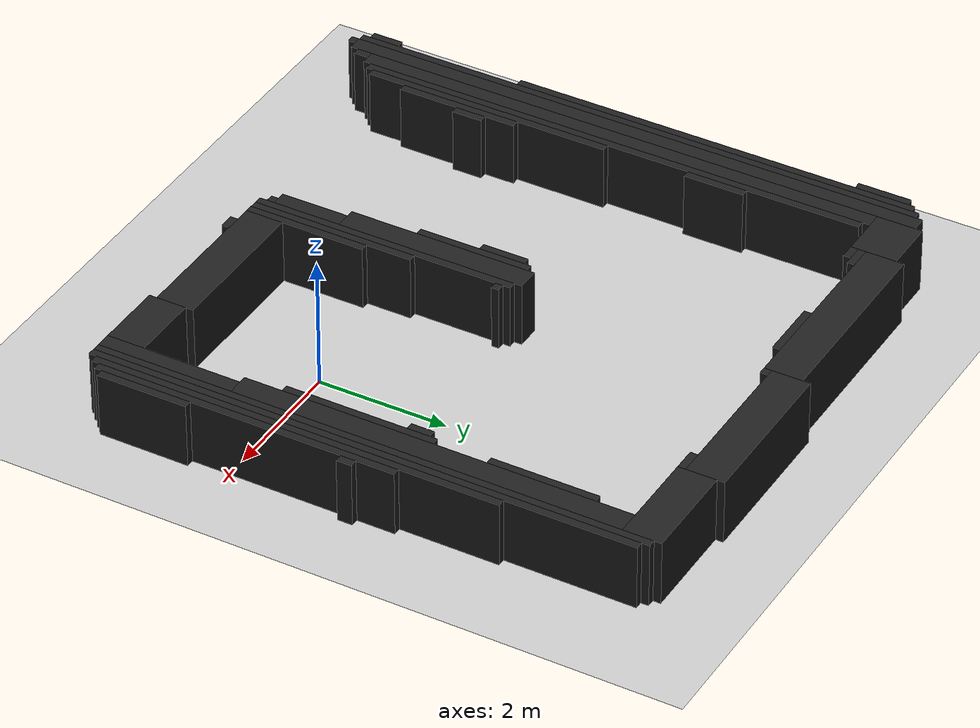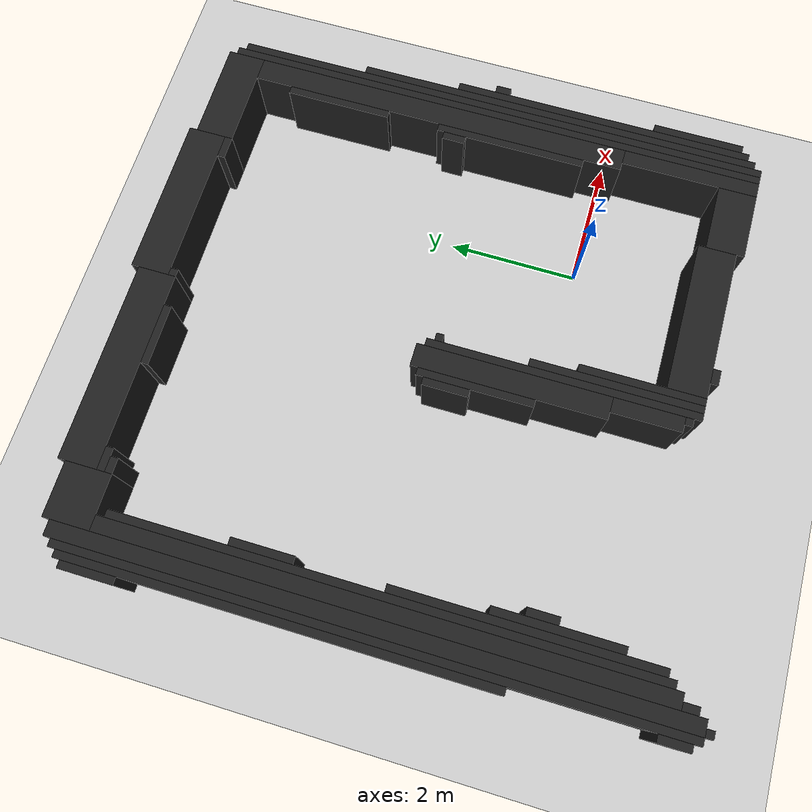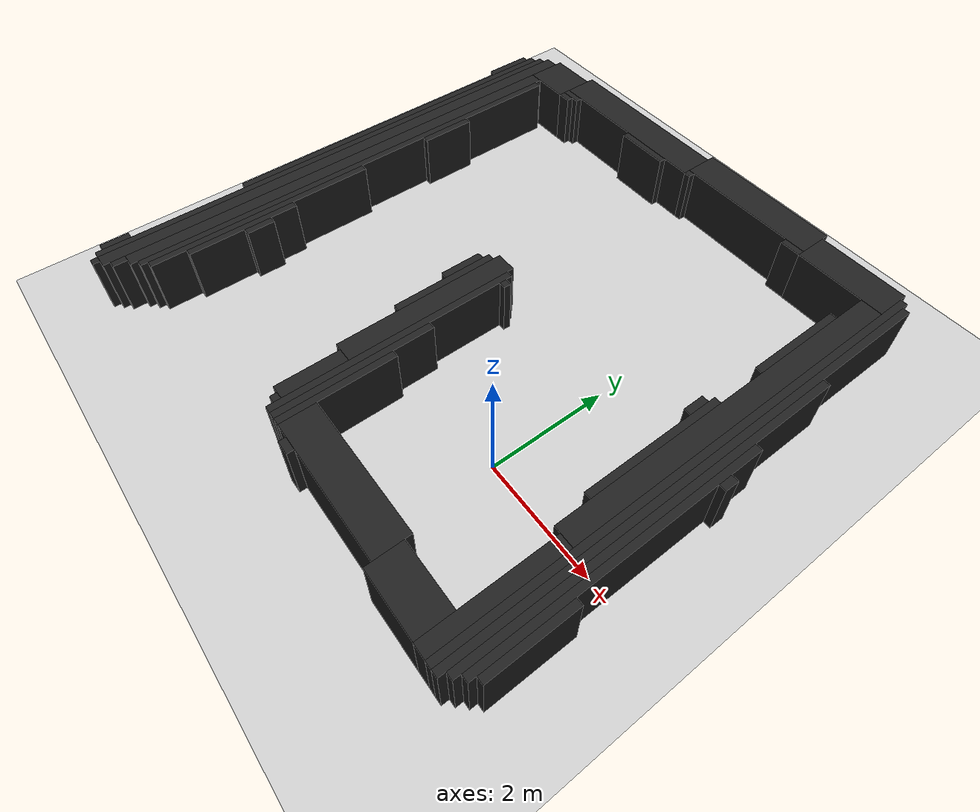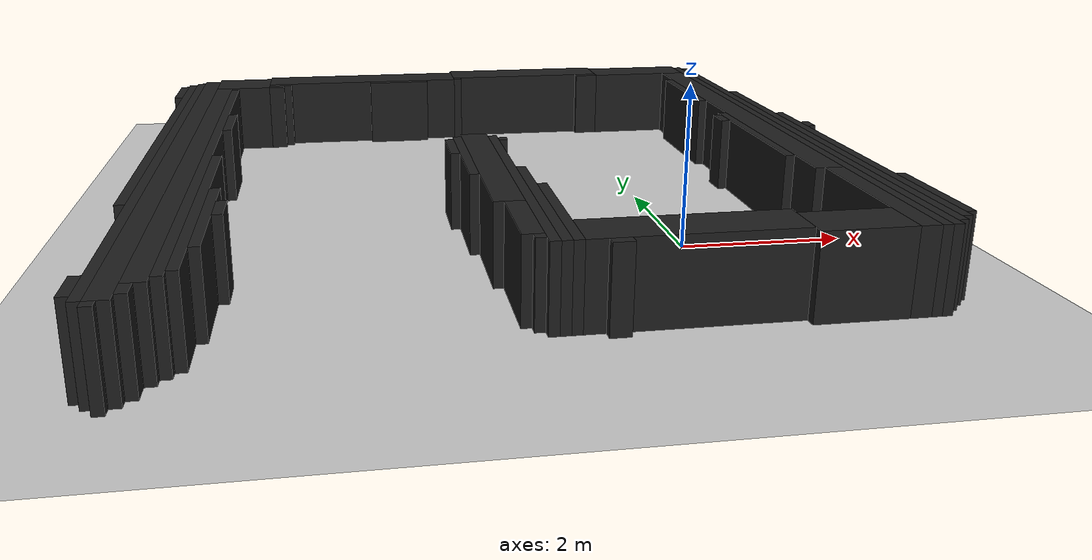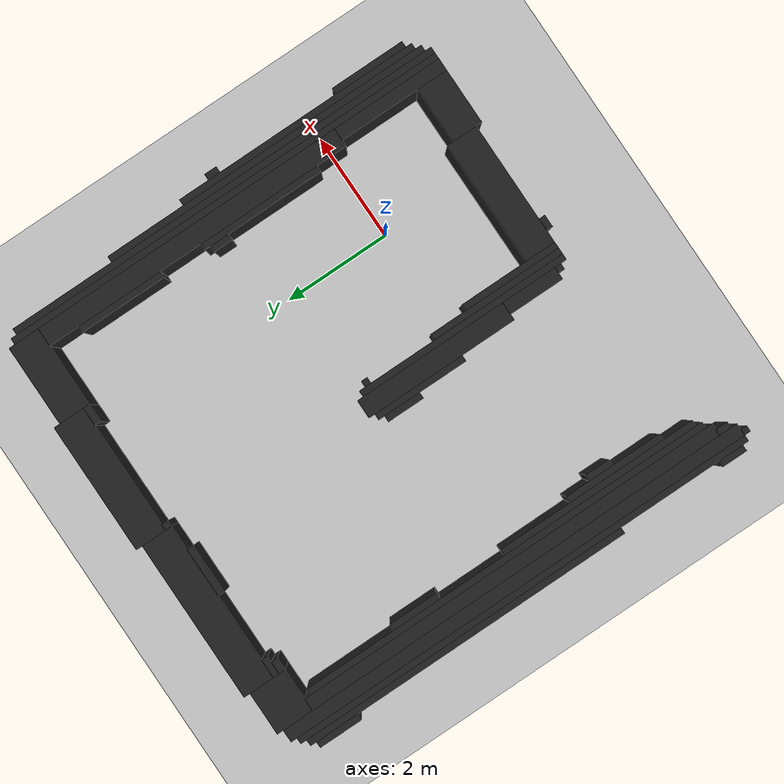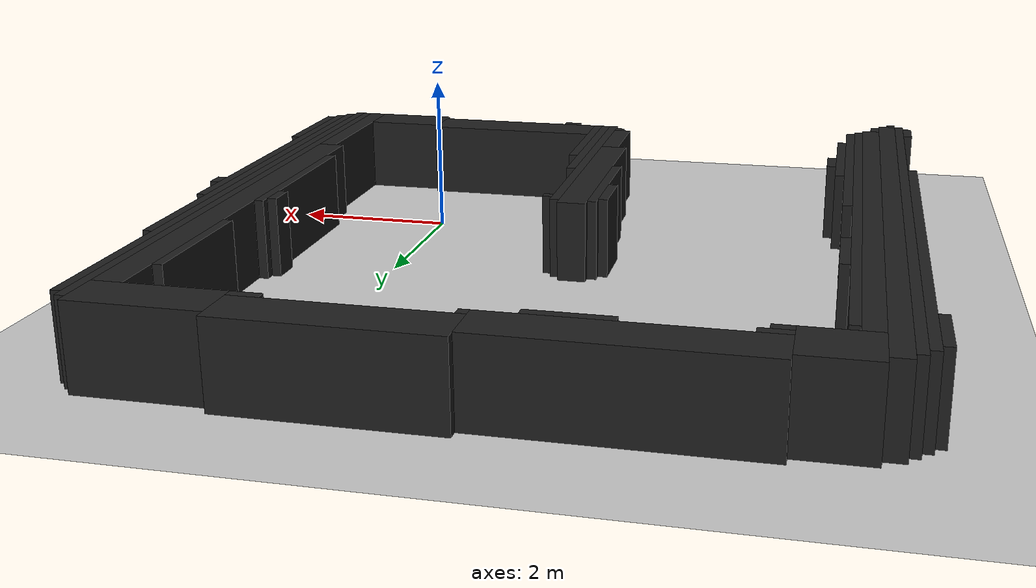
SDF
<?xml version="1.0"?>
<sdf version="1.9">
  <world name="drawn_tb4_world2">
    <physics name="1ms" type="ignored">
      <max_step_size>0.001</max_step_size>
      <real_time_factor>1.0</real_time_factor>
    </physics>

    <plugin filename="gz-sim-physics-system" name="gz::sim::systems::Physics"/>
    <plugin filename="gz-sim-user-commands-system" name="gz::sim::systems::UserCommands"/>
    <plugin filename="gz-sim-scene-broadcaster-system" name="gz::sim::systems::SceneBroadcaster"/>
    <plugin filename="gz-sim-sensors-system" name="gz::sim::systems::Sensors">
      <render_engine>ogre2</render_engine>
    </plugin>

    <scene>
      <ambient>0.45 0.45 0.45 1</ambient>
      <background>0.70 0.72 0.75 1</background>
      <shadows>false</shadows>
    </scene>

    <light name="sun" type="directional">
      <pose>0 0 10 0 0 0</pose>
      <diffuse>0.9 0.9 0.9 1</diffuse>
      <specular>0.1 0.1 0.1 1</specular>
      <direction>-0.5 0.2 -1</direction>
    </light>

    <model name="ground_plane">
      <static>true</static>
      <link name="link">
        <collision name="collision">
          <geometry>
            <plane>
              <normal>0 0 1</normal>
              <size>16.000 16.000</size>
            </plane>
          </geometry>
        </collision>
        <visual name="visual">
          <geometry>
            <plane>
              <normal>0 0 1</normal>
              <size>16.000 16.000</size>
            </plane>
          </geometry>
          <material>
            <ambient>0.78 0.78 0.78 1</ambient>
            <diffuse>0.78 0.78 0.78 1</diffuse>
          </material>
        </visual>
      </link>
    </model>

    <model name="maze_walls">
      <static>true</static>

      <link name="wall_0000">
        <pose>-0.87500 6.12500 0.50000 0 0 0</pose>
        <collision name="collision">
          <geometry>
            <box>
              <size>2.45000 0.58333 1.00000</size>
            </box>
          </geometry>
        </collision>
        <visual name="visual">
          <geometry>
            <box>
              <size>2.45000 0.58333 1.00000</size>
            </box>
          </geometry>
          <material>
            <ambient>0.12 0.12 0.12 1</ambient>
            <diffuse>0.12 0.12 0.12 1</diffuse>
            <specular>0 0 0 1</specular>
          </material>
        </visual>
      </link>
      <link name="wall_0001">
        <pose>-3.61667 6.00833 0.50000 0 0 0</pose>
        <collision name="collision">
          <geometry>
            <box>
              <size>3.03333 0.58333 1.00000</size>
            </box>
          </geometry>
        </collision>
        <visual name="visual">
          <geometry>
            <box>
              <size>3.03333 0.58333 1.00000</size>
            </box>
          </geometry>
          <material>
            <ambient>0.12 0.12 0.12 1</ambient>
            <diffuse>0.12 0.12 0.12 1</diffuse>
            <specular>0 0 0 1</specular>
          </material>
        </visual>
      </link>
      <link name="wall_0002">
        <pose>1.10833 6.00833 0.50000 0 0 0</pose>
        <collision name="collision">
          <geometry>
            <box>
              <size>1.51667 0.58333 1.00000</size>
            </box>
          </geometry>
        </collision>
        <visual name="visual">
          <geometry>
            <box>
              <size>1.51667 0.58333 1.00000</size>
            </box>
          </geometry>
          <material>
            <ambient>0.12 0.12 0.12 1</ambient>
            <diffuse>0.12 0.12 0.12 1</diffuse>
            <specular>0 0 0 1</specular>
          </material>
        </visual>
      </link>
      <link name="wall_0003">
        <pose>-5.54167 5.83333 0.50000 0 0 0</pose>
        <collision name="collision">
          <geometry>
            <box>
              <size>0.81667 0.70000 1.00000</size>
            </box>
          </geometry>
        </collision>
        <visual name="visual">
          <geometry>
            <box>
              <size>0.81667 0.70000 1.00000</size>
            </box>
          </geometry>
          <material>
            <ambient>0.12 0.12 0.12 1</ambient>
            <diffuse>0.12 0.12 0.12 1</diffuse>
            <specular>0 0 0 1</specular>
          </material>
        </visual>
      </link>
      <link name="wall_0004">
        <pose>1.92500 1.92500 0.50000 0 0 0</pose>
        <collision name="collision">
          <geometry>
            <box>
              <size>0.11667 8.51667 1.00000</size>
            </box>
          </geometry>
        </collision>
        <visual name="visual">
          <geometry>
            <box>
              <size>0.11667 8.51667 1.00000</size>
            </box>
          </geometry>
          <material>
            <ambient>0.12 0.12 0.12 1</ambient>
            <diffuse>0.12 0.12 0.12 1</diffuse>
            <specular>0 0 0 1</specular>
          </material>
        </visual>
      </link>
      <link name="wall_0005">
        <pose>-6.06667 1.51667 0.50000 0 0 0</pose>
        <collision name="collision">
          <geometry>
            <box>
              <size>0.23333 9.10000 1.00000</size>
            </box>
          </geometry>
        </collision>
        <visual name="visual">
          <geometry>
            <box>
              <size>0.23333 9.10000 1.00000</size>
            </box>
          </geometry>
          <material>
            <ambient>0.12 0.12 0.12 1</ambient>
            <diffuse>0.12 0.12 0.12 1</diffuse>
            <specular>0 0 0 1</specular>
          </material>
        </visual>
      </link>
      <link name="wall_0006">
        <pose>2.04167 1.86667 0.50000 0 0 0</pose>
        <collision name="collision">
          <geometry>
            <box>
              <size>0.11667 8.40000 1.00000</size>
            </box>
          </geometry>
        </collision>
        <visual name="visual">
          <geometry>
            <box>
              <size>0.11667 8.40000 1.00000</size>
            </box>
          </geometry>
          <material>
            <ambient>0.12 0.12 0.12 1</ambient>
            <diffuse>0.12 0.12 0.12 1</diffuse>
            <specular>0 0 0 1</specular>
          </material>
        </visual>
      </link>
      <link name="wall_0007">
        <pose>-6.24167 1.45833 0.50000 0 0 0</pose>
        <collision name="collision">
          <geometry>
            <box>
              <size>0.11667 8.98333 1.00000</size>
            </box>
          </geometry>
        </collision>
        <visual name="visual">
          <geometry>
            <box>
              <size>0.11667 8.98333 1.00000</size>
            </box>
          </geometry>
          <material>
            <ambient>0.12 0.12 0.12 1</ambient>
            <diffuse>0.12 0.12 0.12 1</diffuse>
            <specular>0 0 0 1</specular>
          </material>
        </visual>
      </link>
      <link name="wall_0008">
        <pose>-6.35833 2.68333 0.50000 0 0 0</pose>
        <collision name="collision">
          <geometry>
            <box>
              <size>0.11667 6.30000 1.00000</size>
            </box>
          </geometry>
        </collision>
        <visual name="visual">
          <geometry>
            <box>
              <size>0.11667 6.30000 1.00000</size>
            </box>
          </geometry>
          <material>
            <ambient>0.12 0.12 0.12 1</ambient>
            <diffuse>0.12 0.12 0.12 1</diffuse>
            <specular>0 0 0 1</specular>
          </material>
        </visual>
      </link>
      <link name="wall_0009">
        <pose>-2.04167 5.77500 0.50000 0 0 0</pose>
        <collision name="collision">
          <geometry>
            <box>
              <size>0.11667 0.11667 1.00000</size>
            </box>
          </geometry>
        </collision>
        <visual name="visual">
          <geometry>
            <box>
              <size>0.11667 0.11667 1.00000</size>
            </box>
          </geometry>
          <material>
            <ambient>0.12 0.12 0.12 1</ambient>
            <diffuse>0.12 0.12 0.12 1</diffuse>
            <specular>0 0 0 1</specular>
          </material>
        </visual>
      </link>
      <link name="wall_0010">
        <pose>0.17500 5.77500 0.50000 0 0 0</pose>
        <collision name="collision">
          <geometry>
            <box>
              <size>0.35000 0.11667 1.00000</size>
            </box>
          </geometry>
        </collision>
        <visual name="visual">
          <geometry>
            <box>
              <size>0.35000 0.11667 1.00000</size>
            </box>
          </geometry>
          <material>
            <ambient>0.12 0.12 0.12 1</ambient>
            <diffuse>0.12 0.12 0.12 1</diffuse>
            <specular>0 0 0 1</specular>
          </material>
        </visual>
      </link>
      <link name="wall_0011">
        <pose>-6.47500 5.30833 0.50000 0 0 0</pose>
        <collision name="collision">
          <geometry>
            <box>
              <size>0.11667 0.81667 1.00000</size>
            </box>
          </geometry>
        </collision>
        <visual name="visual">
          <geometry>
            <box>
              <size>0.11667 0.81667 1.00000</size>
            </box>
          </geometry>
          <material>
            <ambient>0.12 0.12 0.12 1</ambient>
            <diffuse>0.12 0.12 0.12 1</diffuse>
            <specular>0 0 0 1</specular>
          </material>
        </visual>
      </link>
      <link name="wall_0012">
        <pose>-4.95833 5.65833 0.50000 0 0 0</pose>
        <collision name="collision">
          <geometry>
            <box>
              <size>0.35000 0.11667 1.00000</size>
            </box>
          </geometry>
        </collision>
        <visual name="visual">
          <geometry>
            <box>
              <size>0.35000 0.11667 1.00000</size>
            </box>
          </geometry>
          <material>
            <ambient>0.12 0.12 0.12 1</ambient>
            <diffuse>0.12 0.12 0.12 1</diffuse>
            <specular>0 0 0 1</specular>
          </material>
        </visual>
      </link>
      <link name="wall_0013">
        <pose>-3.03333 5.65833 0.50000 0 0 0</pose>
        <collision name="collision">
          <geometry>
            <box>
              <size>0.93333 0.11667 1.00000</size>
            </box>
          </geometry>
        </collision>
        <visual name="visual">
          <geometry>
            <box>
              <size>0.93333 0.11667 1.00000</size>
            </box>
          </geometry>
          <material>
            <ambient>0.12 0.12 0.12 1</ambient>
            <diffuse>0.12 0.12 0.12 1</diffuse>
            <specular>0 0 0 1</specular>
          </material>
        </visual>
      </link>
      <link name="wall_0014">
        <pose>1.69167 2.74167 0.50000 0 0 0</pose>
        <collision name="collision">
          <geometry>
            <box>
              <size>0.35000 5.95000 1.00000</size>
            </box>
          </geometry>
        </collision>
        <visual name="visual">
          <geometry>
            <box>
              <size>0.35000 5.95000 1.00000</size>
            </box>
          </geometry>
          <material>
            <ambient>0.12 0.12 0.12 1</ambient>
            <diffuse>0.12 0.12 0.12 1</diffuse>
            <specular>0 0 0 1</specular>
          </material>
        </visual>
      </link>
      <link name="wall_0015">
        <pose>-5.01667 5.54167 0.50000 0 0 0</pose>
        <collision name="collision">
          <geometry>
            <box>
              <size>0.23333 0.11667 1.00000</size>
            </box>
          </geometry>
        </collision>
        <visual name="visual">
          <geometry>
            <box>
              <size>0.23333 0.11667 1.00000</size>
            </box>
          </geometry>
          <material>
            <ambient>0.12 0.12 0.12 1</ambient>
            <diffuse>0.12 0.12 0.12 1</diffuse>
            <specular>0 0 0 1</specular>
          </material>
        </visual>
      </link>
      <link name="wall_0016">
        <pose>-5.83333 1.40000 0.50000 0 0 0</pose>
        <collision name="collision">
          <geometry>
            <box>
              <size>0.23333 8.16667 1.00000</size>
            </box>
          </geometry>
        </collision>
        <visual name="visual">
          <geometry>
            <box>
              <size>0.23333 8.16667 1.00000</size>
            </box>
          </geometry>
          <material>
            <ambient>0.12 0.12 0.12 1</ambient>
            <diffuse>0.12 0.12 0.12 1</diffuse>
            <specular>0 0 0 1</specular>
          </material>
        </visual>
      </link>
      <link name="wall_0017">
        <pose>-5.65833 1.40000 0.50000 0 0 0</pose>
        <collision name="collision">
          <geometry>
            <box>
              <size>0.11667 7.93333 1.00000</size>
            </box>
          </geometry>
        </collision>
        <visual name="visual">
          <geometry>
            <box>
              <size>0.11667 7.93333 1.00000</size>
            </box>
          </geometry>
          <material>
            <ambient>0.12 0.12 0.12 1</ambient>
            <diffuse>0.12 0.12 0.12 1</diffuse>
            <specular>0 0 0 1</specular>
          </material>
        </visual>
      </link>
      <link name="wall_0018">
        <pose>1.45833 4.31667 0.50000 0 0 0</pose>
        <collision name="collision">
          <geometry>
            <box>
              <size>0.11667 1.63333 1.00000</size>
            </box>
          </geometry>
        </collision>
        <visual name="visual">
          <geometry>
            <box>
              <size>0.11667 1.63333 1.00000</size>
            </box>
          </geometry>
          <material>
            <ambient>0.12 0.12 0.12 1</ambient>
            <diffuse>0.12 0.12 0.12 1</diffuse>
            <specular>0 0 0 1</specular>
          </material>
        </visual>
      </link>
      <link name="wall_0019">
        <pose>2.15833 0.93333 0.50000 0 0 0</pose>
        <collision name="collision">
          <geometry>
            <box>
              <size>0.11667 6.30000 1.00000</size>
            </box>
          </geometry>
        </collision>
        <visual name="visual">
          <geometry>
            <box>
              <size>0.11667 6.30000 1.00000</size>
            </box>
          </geometry>
          <material>
            <ambient>0.12 0.12 0.12 1</ambient>
            <diffuse>0.12 0.12 0.12 1</diffuse>
            <specular>0 0 0 1</specular>
          </material>
        </visual>
      </link>
      <link name="wall_0020">
        <pose>-5.54167 3.15000 0.50000 0 0 0</pose>
        <collision name="collision">
          <geometry>
            <box>
              <size>0.11667 0.93333 1.00000</size>
            </box>
          </geometry>
        </collision>
        <visual name="visual">
          <geometry>
            <box>
              <size>0.11667 0.93333 1.00000</size>
            </box>
          </geometry>
          <material>
            <ambient>0.12 0.12 0.12 1</ambient>
            <diffuse>0.12 0.12 0.12 1</diffuse>
            <specular>0 0 0 1</specular>
          </material>
        </visual>
      </link>
      <link name="wall_0021">
        <pose>1.45833 1.51667 0.50000 0 0 0</pose>
        <collision name="collision">
          <geometry>
            <box>
              <size>0.11667 2.33333 1.00000</size>
            </box>
          </geometry>
        </collision>
        <visual name="visual">
          <geometry>
            <box>
              <size>0.11667 2.33333 1.00000</size>
            </box>
          </geometry>
          <material>
            <ambient>0.12 0.12 0.12 1</ambient>
            <diffuse>0.12 0.12 0.12 1</diffuse>
            <specular>0 0 0 1</specular>
          </material>
        </visual>
      </link>
      <link name="wall_0022">
        <pose>1.34167 2.39167 0.50000 0 0 0</pose>
        <collision name="collision">
          <geometry>
            <box>
              <size>0.11667 0.35000 1.00000</size>
            </box>
          </geometry>
        </collision>
        <visual name="visual">
          <geometry>
            <box>
              <size>0.11667 0.35000 1.00000</size>
            </box>
          </geometry>
          <material>
            <ambient>0.12 0.12 0.12 1</ambient>
            <diffuse>0.12 0.12 0.12 1</diffuse>
            <specular>0 0 0 1</specular>
          </material>
        </visual>
      </link>
      <link name="wall_0023">
        <pose>2.27500 0.23333 0.50000 0 0 0</pose>
        <collision name="collision">
          <geometry>
            <box>
              <size>0.11667 4.66667 1.00000</size>
            </box>
          </geometry>
        </collision>
        <visual name="visual">
          <geometry>
            <box>
              <size>0.11667 4.66667 1.00000</size>
            </box>
          </geometry>
          <material>
            <ambient>0.12 0.12 0.12 1</ambient>
            <diffuse>0.12 0.12 0.12 1</diffuse>
            <specular>0 0 0 1</specular>
          </material>
        </visual>
      </link>
      <link name="wall_0024">
        <pose>-2.27500 0.52500 0.50000 0 0 0</pose>
        <collision name="collision">
          <geometry>
            <box>
              <size>0.35000 2.91667 1.00000</size>
            </box>
          </geometry>
        </collision>
        <visual name="visual">
          <geometry>
            <box>
              <size>0.35000 2.91667 1.00000</size>
            </box>
          </geometry>
          <material>
            <ambient>0.12 0.12 0.12 1</ambient>
            <diffuse>0.12 0.12 0.12 1</diffuse>
            <specular>0 0 0 1</specular>
          </material>
        </visual>
      </link>
      <link name="wall_0025">
        <pose>2.39167 1.86667 0.50000 0 0 0</pose>
        <collision name="collision">
          <geometry>
            <box>
              <size>0.11667 0.23333 1.00000</size>
            </box>
          </geometry>
        </collision>
        <visual name="visual">
          <geometry>
            <box>
              <size>0.11667 0.23333 1.00000</size>
            </box>
          </geometry>
          <material>
            <ambient>0.12 0.12 0.12 1</ambient>
            <diffuse>0.12 0.12 0.12 1</diffuse>
            <specular>0 0 0 1</specular>
          </material>
        </visual>
      </link>
      <link name="wall_0026">
        <pose>-2.50833 0.99167 0.50000 0 0 0</pose>
        <collision name="collision">
          <geometry>
            <box>
              <size>0.11667 1.75000 1.00000</size>
            </box>
          </geometry>
        </collision>
        <visual name="visual">
          <geometry>
            <box>
              <size>0.11667 1.75000 1.00000</size>
            </box>
          </geometry>
          <material>
            <ambient>0.12 0.12 0.12 1</ambient>
            <diffuse>0.12 0.12 0.12 1</diffuse>
            <specular>0 0 0 1</specular>
          </material>
        </visual>
      </link>
      <link name="wall_0027">
        <pose>-2.04167 -0.17500 0.50000 0 0 0</pose>
        <collision name="collision">
          <geometry>
            <box>
              <size>0.11667 4.08333 1.00000</size>
            </box>
          </geometry>
        </collision>
        <visual name="visual">
          <geometry>
            <box>
              <size>0.11667 4.08333 1.00000</size>
            </box>
          </geometry>
          <material>
            <ambient>0.12 0.12 0.12 1</ambient>
            <diffuse>0.12 0.12 0.12 1</diffuse>
            <specular>0 0 0 1</specular>
          </material>
        </visual>
      </link>
      <link name="wall_0028">
        <pose>-2.62500 1.40000 0.50000 0 0 0</pose>
        <collision name="collision">
          <geometry>
            <box>
              <size>0.11667 0.70000 1.00000</size>
            </box>
          </geometry>
        </collision>
        <visual name="visual">
          <geometry>
            <box>
              <size>0.11667 0.70000 1.00000</size>
            </box>
          </geometry>
          <material>
            <ambient>0.12 0.12 0.12 1</ambient>
            <diffuse>0.12 0.12 0.12 1</diffuse>
            <specular>0 0 0 1</specular>
          </material>
        </visual>
      </link>
      <link name="wall_0029">
        <pose>-1.92500 1.69167 0.50000 0 0 0</pose>
        <collision name="collision">
          <geometry>
            <box>
              <size>0.11667 0.11667 1.00000</size>
            </box>
          </geometry>
        </collision>
        <visual name="visual">
          <geometry>
            <box>
              <size>0.11667 0.11667 1.00000</size>
            </box>
          </geometry>
          <material>
            <ambient>0.12 0.12 0.12 1</ambient>
            <diffuse>0.12 0.12 0.12 1</diffuse>
            <specular>0 0 0 1</specular>
          </material>
        </visual>
      </link>
      <link name="wall_0030">
        <pose>-5.54167 -0.52500 0.50000 0 0 0</pose>
        <collision name="collision">
          <geometry>
            <box>
              <size>0.11667 3.85000 1.00000</size>
            </box>
          </geometry>
        </collision>
        <visual name="visual">
          <geometry>
            <box>
              <size>0.11667 3.85000 1.00000</size>
            </box>
          </geometry>
          <material>
            <ambient>0.12 0.12 0.12 1</ambient>
            <diffuse>0.12 0.12 0.12 1</diffuse>
            <specular>0 0 0 1</specular>
          </material>
        </visual>
      </link>
      <link name="wall_0031">
        <pose>-1.92500 -0.93333 0.50000 0 0 0</pose>
        <collision name="collision">
          <geometry>
            <box>
              <size>0.11667 2.56667 1.00000</size>
            </box>
          </geometry>
        </collision>
        <visual name="visual">
          <geometry>
            <box>
              <size>0.11667 2.56667 1.00000</size>
            </box>
          </geometry>
          <material>
            <ambient>0.12 0.12 0.12 1</ambient>
            <diffuse>0.12 0.12 0.12 1</diffuse>
            <specular>0 0 0 1</specular>
          </material>
        </visual>
      </link>
      <link name="wall_0032">
        <pose>-5.42500 -0.93333 0.50000 0 0 0</pose>
        <collision name="collision">
          <geometry>
            <box>
              <size>0.11667 1.86667 1.00000</size>
            </box>
          </geometry>
        </collision>
        <visual name="visual">
          <geometry>
            <box>
              <size>0.11667 1.86667 1.00000</size>
            </box>
          </geometry>
          <material>
            <ambient>0.12 0.12 0.12 1</ambient>
            <diffuse>0.12 0.12 0.12 1</diffuse>
            <specular>0 0 0 1</specular>
          </material>
        </visual>
      </link>
      <link name="wall_0033">
        <pose>1.75000 -1.28333 0.50000 0 0 0</pose>
        <collision name="collision">
          <geometry>
            <box>
              <size>0.23333 2.10000 1.00000</size>
            </box>
          </geometry>
        </collision>
        <visual name="visual">
          <geometry>
            <box>
              <size>0.23333 2.10000 1.00000</size>
            </box>
          </geometry>
          <material>
            <ambient>0.12 0.12 0.12 1</ambient>
            <diffuse>0.12 0.12 0.12 1</diffuse>
            <specular>0 0 0 1</specular>
          </material>
        </visual>
      </link>
      <link name="wall_0034">
        <pose>-1.80833 -1.28333 0.50000 0 0 0</pose>
        <collision name="collision">
          <geometry>
            <box>
              <size>0.11667 1.86667 1.00000</size>
            </box>
          </geometry>
        </collision>
        <visual name="visual">
          <geometry>
            <box>
              <size>0.11667 1.86667 1.00000</size>
            </box>
          </geometry>
          <material>
            <ambient>0.12 0.12 0.12 1</ambient>
            <diffuse>0.12 0.12 0.12 1</diffuse>
            <specular>0 0 0 1</specular>
          </material>
        </visual>
      </link>
      <link name="wall_0035">
        <pose>-5.30833 -0.70000 0.50000 0 0 0</pose>
        <collision name="collision">
          <geometry>
            <box>
              <size>0.11667 0.46667 1.00000</size>
            </box>
          </geometry>
        </collision>
        <visual name="visual">
          <geometry>
            <box>
              <size>0.11667 0.46667 1.00000</size>
            </box>
          </geometry>
          <material>
            <ambient>0.12 0.12 0.12 1</ambient>
            <diffuse>0.12 0.12 0.12 1</diffuse>
            <specular>0 0 0 1</specular>
          </material>
        </visual>
      </link>
      <link name="wall_0036">
        <pose>2.39167 -1.28333 0.50000 0 0 0</pose>
        <collision name="collision">
          <geometry>
            <box>
              <size>0.11667 1.40000 1.00000</size>
            </box>
          </geometry>
        </collision>
        <visual name="visual">
          <geometry>
            <box>
              <size>0.11667 1.40000 1.00000</size>
            </box>
          </geometry>
          <material>
            <ambient>0.12 0.12 0.12 1</ambient>
            <diffuse>0.12 0.12 0.12 1</diffuse>
            <specular>0 0 0 1</specular>
          </material>
        </visual>
      </link>
      <link name="wall_0037">
        <pose>-2.21667 -1.45833 0.50000 0 0 0</pose>
        <collision name="collision">
          <geometry>
            <box>
              <size>0.23333 1.05000 1.00000</size>
            </box>
          </geometry>
        </collision>
        <visual name="visual">
          <geometry>
            <box>
              <size>0.23333 1.05000 1.00000</size>
            </box>
          </geometry>
          <material>
            <ambient>0.12 0.12 0.12 1</ambient>
            <diffuse>0.12 0.12 0.12 1</diffuse>
            <specular>0 0 0 1</specular>
          </material>
        </visual>
      </link>
      <link name="wall_0038">
        <pose>-0.58333 -1.92500 0.50000 0 0 0</pose>
        <collision name="collision">
          <geometry>
            <box>
              <size>2.33333 0.58333 1.00000</size>
            </box>
          </geometry>
        </collision>
        <visual name="visual">
          <geometry>
            <box>
              <size>2.33333 0.58333 1.00000</size>
            </box>
          </geometry>
          <material>
            <ambient>0.12 0.12 0.12 1</ambient>
            <diffuse>0.12 0.12 0.12 1</diffuse>
            <specular>0 0 0 1</specular>
          </material>
        </visual>
      </link>
      <link name="wall_0039">
        <pose>1.10833 -2.04167 0.50000 0 0 0</pose>
        <collision name="collision">
          <geometry>
            <box>
              <size>1.05000 0.58333 1.00000</size>
            </box>
          </geometry>
        </collision>
        <visual name="visual">
          <geometry>
            <box>
              <size>1.05000 0.58333 1.00000</size>
            </box>
          </geometry>
          <material>
            <ambient>0.12 0.12 0.12 1</ambient>
            <diffuse>0.12 0.12 0.12 1</diffuse>
            <specular>0 0 0 1</specular>
          </material>
        </visual>
      </link>
      <link name="wall_0040">
        <pose>-2.15833 -2.04167 0.50000 0 0 0</pose>
        <collision name="collision">
          <geometry>
            <box>
              <size>0.11667 0.11667 1.00000</size>
            </box>
          </geometry>
        </collision>
        <visual name="visual">
          <geometry>
            <box>
              <size>0.11667 0.11667 1.00000</size>
            </box>
          </geometry>
          <material>
            <ambient>0.12 0.12 0.12 1</ambient>
            <diffuse>0.12 0.12 0.12 1</diffuse>
            <specular>0 0 0 1</specular>
          </material>
        </visual>
      </link>
      <link name="wall_0041">
        <pose>-1.40000 -2.27500 0.50000 0 0 0</pose>
        <collision name="collision">
          <geometry>
            <box>
              <size>0.23333 0.11667 1.00000</size>
            </box>
          </geometry>
        </collision>
        <visual name="visual">
          <geometry>
            <box>
              <size>0.23333 0.11667 1.00000</size>
            </box>
          </geometry>
          <material>
            <ambient>0.12 0.12 0.12 1</ambient>
            <diffuse>0.12 0.12 0.12 1</diffuse>
            <specular>0 0 0 1</specular>
          </material>
        </visual>
      </link>
      <link name="wall_0042">
        <pose>-6.35833 -2.68333 0.50000 0 0 0</pose>
        <collision name="collision">
          <geometry>
            <box>
              <size>0.11667 0.46667 1.00000</size>
            </box>
          </geometry>
        </collision>
        <visual name="visual">
          <geometry>
            <box>
              <size>0.11667 0.46667 1.00000</size>
            </box>
          </geometry>
          <material>
            <ambient>0.12 0.12 0.12 1</ambient>
            <diffuse>0.12 0.12 0.12 1</diffuse>
            <specular>0 0 0 1</specular>
          </material>
        </visual>
      </link>
      <link name="wall_0043">
        <pose>-5.89167 -2.80000 0.50000 0 0 0</pose>
        <collision name="collision">
          <geometry>
            <box>
              <size>0.11667 0.23333 1.00000</size>
            </box>
          </geometry>
        </collision>
        <visual name="visual">
          <geometry>
            <box>
              <size>0.11667 0.23333 1.00000</size>
            </box>
          </geometry>
          <material>
            <ambient>0.12 0.12 0.12 1</ambient>
            <diffuse>0.12 0.12 0.12 1</diffuse>
            <specular>0 0 0 1</specular>
          </material>
        </visual>
      </link>
      <link name="wall_0044">
        <pose>-6.12500 -3.09167 0.50000 0 0 0</pose>
        <collision name="collision">
          <geometry>
            <box>
              <size>0.11667 0.11667 1.00000</size>
            </box>
          </geometry>
        </collision>
        <visual name="visual">
          <geometry>
            <box>
              <size>0.11667 0.11667 1.00000</size>
            </box>
          </geometry>
          <material>
            <ambient>0.12 0.12 0.12 1</ambient>
            <diffuse>0.12 0.12 0.12 1</diffuse>
            <specular>0 0 0 1</specular>
          </material>
        </visual>
      </link>
    </model>
  </world>
</sdf>
